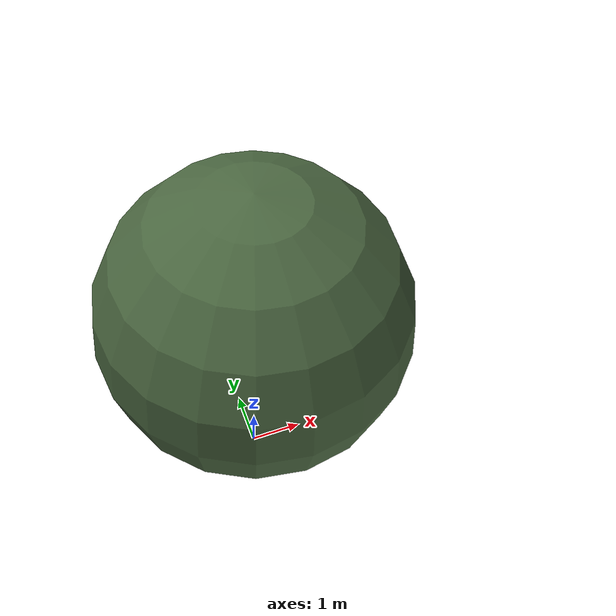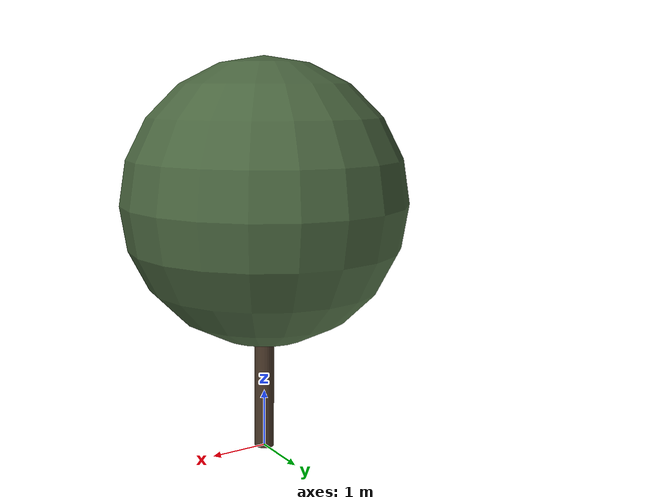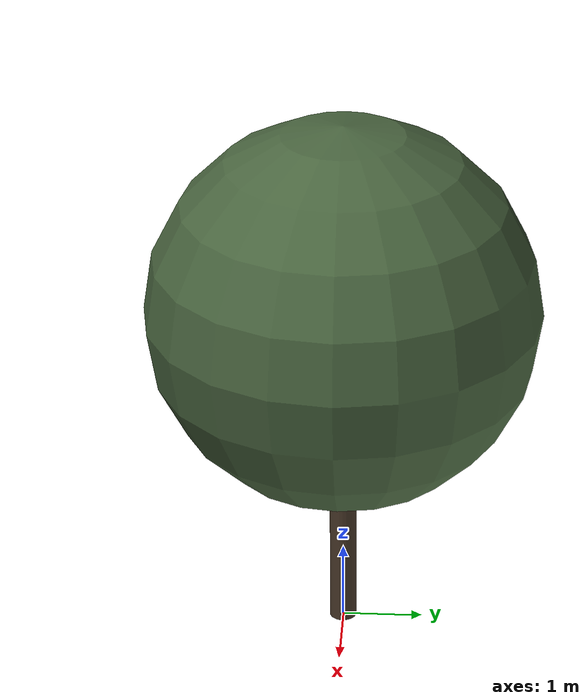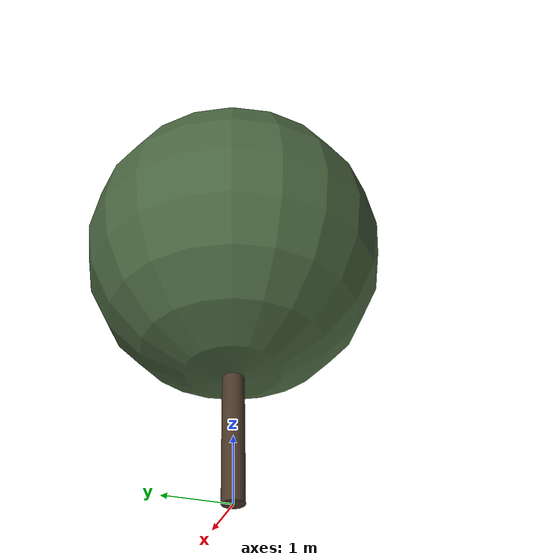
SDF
<?xml version="1.0" ?>
<sdf version="1.10">
  <model name="chene_vert_19">
    <static>true</static>

    <!-- Tronc -->
    <link name="trunk">
      <pose>0 0 1.7969081365829833 0 0 0</pose>
      <visual name="trunk_visual">
        <geometry>
          <cylinder>
            <radius>0.1680511930750574</radius>
            <length>3.5938162731659666</length>
          </cylinder>
        </geometry>
        <material>
          <ambient>0.29 0.22 0.16 1</ambient>
          <diffuse>0.29 0.22 0.16 1</diffuse>
          <specular>0.1 0.1 0.1 1</specular>
        </material>
      </visual>
      <collision name="trunk_collision">
        <geometry>
          <cylinder>
            <radius>0.1680511930750574</radius>
            <length>3.5938162731659666</length>
          </cylinder>
        </geometry>
      </collision>
    </link>

    <!-- Feuillage -->
    <link name="crown">
      <pose>0 0 4.318856066412948 0 0 0</pose>
      <visual name="crown_visual">
        <geometry>
          <sphere>
              <radius>2.4167993108232726</radius>
            </sphere>
        </geometry>
        <material>
          <ambient>0.29 0.40 0.25 1</ambient>
          <diffuse>0.29 0.40 0.25 1</diffuse>
          <specular>0.1 0.1 0.1 1</specular>
        </material>
      </visual>
      <collision name="crown_collision">
        <geometry>
          <sphere>
            <radius>1.9334394486586182</radius>
          </sphere>
        </geometry>
      </collision>
    </link>

    <!-- Joint tronc-feuillage -->
    <joint name="trunk_crown_joint" type="fixed">
      <parent>trunk</parent>
      <child>crown</child>
    </joint>

  </model>
</sdf>
